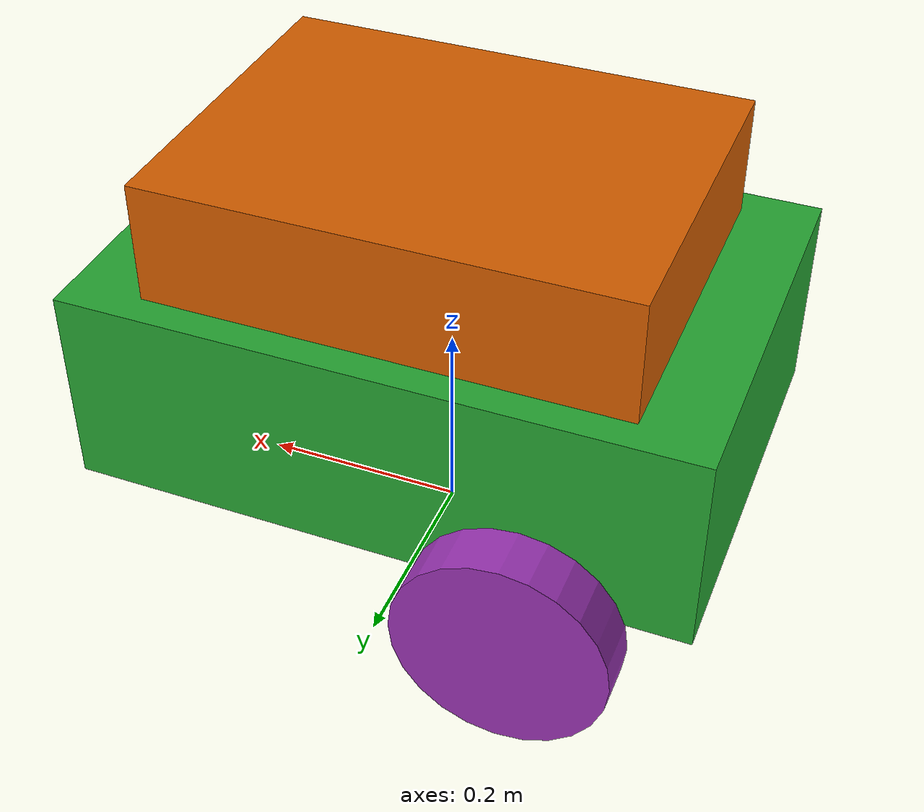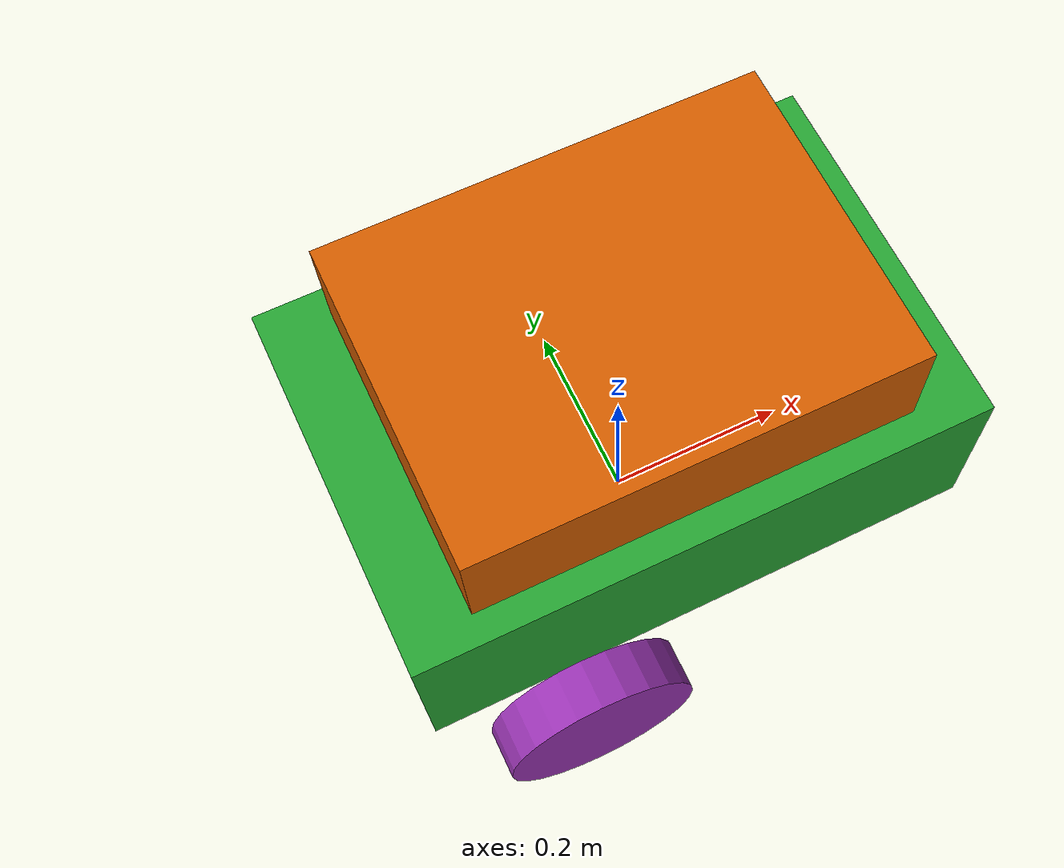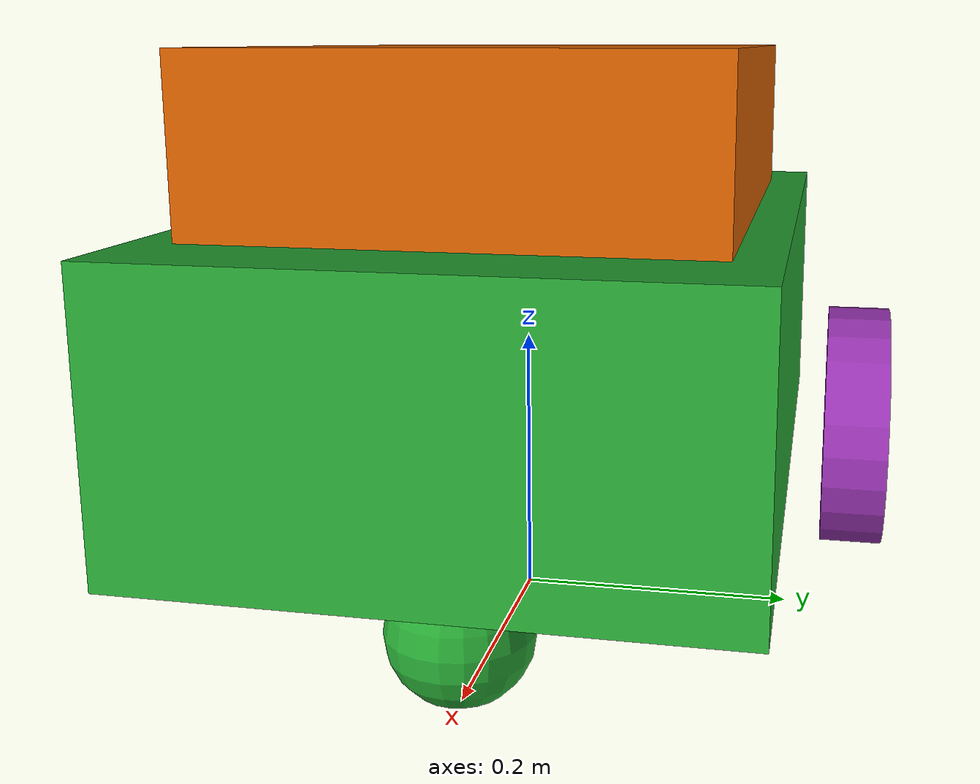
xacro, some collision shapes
<?xml version="1.0"?>
<robot xmlns:xacro="http://www.ros.org/wiki/xacro">

    <xacro:property name="base_length" value="0.6" />
    <xacro:property name="base_width" value="0.4" />
    <xacro:property name="base_height" value="0.2" />
    <xacro:property name="wheel_radius" value="0.1" />
    <xacro:property name="wheel_length" value="0.05" />

    <link name="base_link">
        <visual>
            <geometry>
                <box size="${base_length} ${base_width} ${base_height}"/>
            </geometry>
            <origin xyz="0 0 ${wheel_radius}" rpy="0 0 0"/>
            <material name="green_b" />
        </visual>
        <collision>
            <geometry>
                <box size="${base_length} ${base_width} ${base_height}"/>
            </geometry>
            <origin xyz="0 0 ${wheel_radius}" rpy="0 0 0"/>
        </collision>
        <xacro:box_inertia
            m="5.0"
            l="${base_length}" w="${base_width}" h="${base_height}"
            xyz="0 0 ${wheel_radius}" rpy="0 0 0"
        />

    </link>

    <link name="right_wheel_link">
        <visual>
            <geometry>
                <cylinder radius="${wheel_radius}" length="${wheel_length}" />
            </geometry>
            <origin xyz="0 -0.025 0" rpy="${pi / 2.0} 0 0"/>
            <material name="purple_r" />
        </visual>
        <collision>
           <geometry>
                <cylinder radius="${wheel_radius}" length="${wheel_length}" />
            </geometry>
            <origin xyz="0 -0.025 0" rpy="${pi / 2.0} 0 0"/>
        </collision>
        <xacro:cylinder_inertia
            m="1.0"
            r="${wheel_radius}"
            h="${wheel_length}"
            xyz="0 -0.025 0"
            rpy="${pi / 2.0} 0 0"
        />
    </link>

    <link name="left_wheel_link">
        <visual>
            <geometry>
                <cylinder radius="${wheel_radius}" length="${wheel_length}" />
            </geometry>
            <origin xyz="0 0.025 0" rpy="${pi / 2.0} 0 0"/>
            <material name="purple_l" />
        </visual>
        <collision>
            <geometry>
                <cylinder radius="${wheel_radius}" length="${wheel_length}" />
            </geometry>
            <origin xyz="0 0.025 0" rpy="${pi / 2.0} 0 0"/>
        </collision>
        <xacro:cylinder_inertia
            m="1.0"
            r="${wheel_radius}"
            h="${wheel_length}"
            xyz="0 0.025 0"
            rpy="${pi / 2.0} 0 0"
        />
    </link>

    <link name="castor_wheel">
        <visual>
            <geometry>
                <sphere radius="${wheel_radius / 2.0}" />
            </geometry>
            <origin xyz="0 0 0" />
            <material name="green_b" />
        </visual>
        <collision>
            <geometry>
                <sphere radius="${wheel_radius / 2.0}" />
            </geometry>
            <origin xyz="0 0 0" />
        </collision>
        <xacro:sphere_inertia
            m="0.5"
            r="${wheel_radius / 2.0}"
            xyz="0 0 0"
        />
    </link>

    <link name="base_footprint">
        <origin xyz="0 0 0" />
    </link>

    <link name="blueRov">
        <visual>
            <geometry>

                <mesh filename="file://$(find neptune_2_description)/meshes/blueRov2.dae" />

           </geometry>
            <origin xyz="0.0 0.0 -0.18" rpy="0 0 ${pi / 2}" />
        </visual>
        <collision>
            <origin xyz="0.0 0.0 -0.18" rpy="0 0 ${pi / 2}" />
            <geometry>
                <box size="0.340 0.457 0.254"/>
            </geometry>
        </collision>
        <xacro:box_inertia
            m="10"
            l="0.340" w="0.457" h="0.254"
            xyz="0.0 0.0 -0.18" rpy="0 0 0"
        />
    </link>
    <joint name="joint_base_blueRov" type="fixed">
        <origin xyz="0 0 0.37" rpy=" 0 0 0"/> <!--{pi} 0 ${pi / 2} -->
        <parent link="base_link"/>
        <child link="blueRov"/>
        <axis xyz="0 1 0"/>
    </joint>

    <joint name="base_joint" type="fixed">
        <parent link="base_footprint" />
        <child link="base_link" />
        <origin xyz="0 0 ${wheel_radius}" rpy="0 0 0" />
    </joint>

    <joint name="base_right_wheel_joint" type="continuous">
        <parent link="base_link" />
        <child link="right_wheel_link"/>
        <origin xyz ="${-base_length / 4.0} -0.225 0" rpy="0 0 0" />
        <axis xyz="0 1 0" />
    </joint>

    <joint name="base_left_wheel_joint" type="continuous">
        <parent link="base_link" />
        <child link="left_wheel_link"/>
        <origin xyz ="${-base_length / 4.0} 0.225 0" rpy="0 0 0" />
        <axis xyz="0 1 0" />
    </joint>

    <joint name="base_castor_wheel" type="fixed">
        <parent link="base_link" />
        <child link="castor_wheel" />
        <origin xyz="${base_length / 3.0} 0 ${-wheel_radius / 2.0}" />
    </joint>
</robot>
